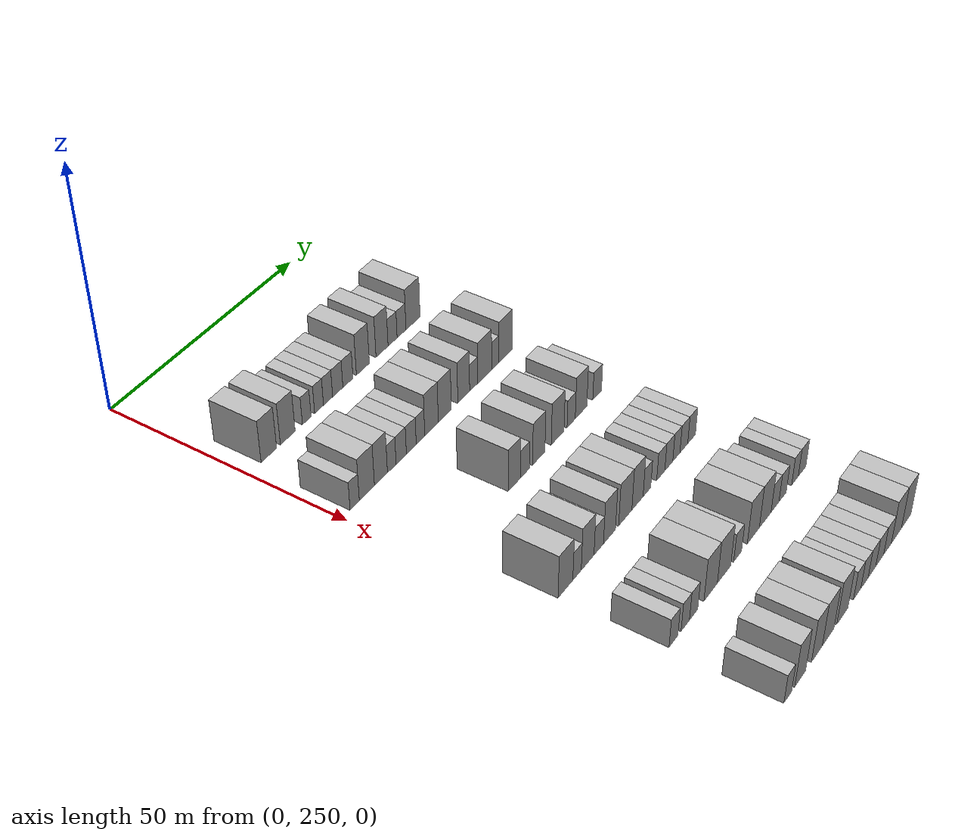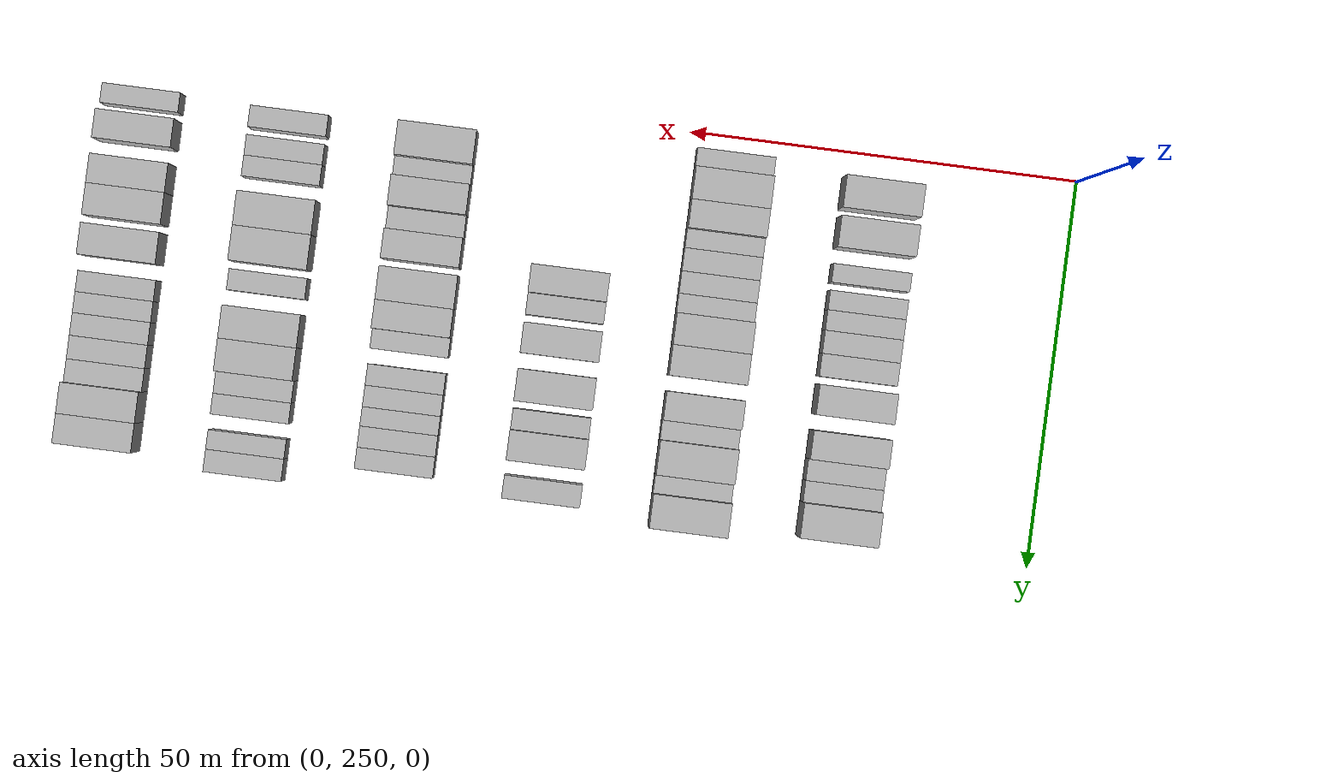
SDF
<sdf version="1.6">
 <world name="default">
  <model name="building_154">
   <static>1</static>
   <pose>25.0000 255.4189 0 0.000000 0.000000 0.000000</pose>
   <link name="link">
    <pose>0 0 4.50 0 0 0</pose>
    <collision name="collision"><geometry><box><size>10.0000 4.1557 9.0000</size></box></geometry></collision>
    <visual name="visual">
     <cast_shadows>0</cast_shadows>
     <geometry><box><size>10.0000 4.1557 9.0000</size></box></geometry>
     <material>
      <script>
       <uri>model://HANNAS_wall/materials/scripts</uri>
       <uri>model://HANNAS_wall/materials/textures</uri>
       <name>vrc/HANNAS_wall</name>
      </script>
     </material>
    </visual>
   </link>
  </model>
  <model name="building_155">
   <static>1</static>
   <pose>25.0000 260.5180 0 0.000000 0.000000 0.000000</pose>
   <link name="link">
    <pose>0 0 4.50 0 0 0</pose>
    <collision name="collision"><geometry><box><size>10.0000 4.0425 9.0000</size></box></geometry></collision>
    <visual name="visual">
     <cast_shadows>0</cast_shadows>
     <geometry><box><size>10.0000 4.0425 9.0000</size></box></geometry>
     <material>
      <script>
       <uri>model://HANNAS_wall/materials/scripts</uri>
       <uri>model://HANNAS_wall/materials/textures</uri>
       <name>vrc/HANNAS_wall</name>
      </script>
     </material>
    </visual>
   </link>
  </model>
  <model name="building_156">
   <static>1</static>
   <pose>25.0000 265.7465 0 0.000000 0.000000 0.000000</pose>
   <link name="link">
    <pose>0 0 3.00 0 0 0</pose>
    <collision name="collision"><geometry><box><size>10.0000 2.4146 6.0000</size></box></geometry></collision>
    <visual name="visual">
     <cast_shadows>0</cast_shadows>
     <geometry><box><size>10.0000 2.4146 6.0000</size></box></geometry>
     <material>
      <script>
       <uri>model://HANNAS_wall/materials/scripts</uri>
       <uri>model://HANNAS_wall/materials/textures</uri>
       <name>vrc/HANNAS_wall</name>
      </script>
     </material>
    </visual>
   </link>
  </model>
  <model name="building_157">
   <static>1</static>
   <pose>25.0000 269.2082 0 0.000000 0.000000 0.000000</pose>
   <link name="link">
    <pose>0 0 3.00 0 0 0</pose>
    <collision name="collision"><geometry><box><size>10.0000 2.5088 6.0000</size></box></geometry></collision>
    <visual name="visual">
     <cast_shadows>0</cast_shadows>
     <geometry><box><size>10.0000 2.5088 6.0000</size></box></geometry>
     <material>
      <script>
       <uri>model://HANNAS_wall/materials/scripts</uri>
       <uri>model://HANNAS_wall/materials/textures</uri>
       <name>vrc/HANNAS_wall</name>
      </script>
     </material>
    </visual>
   </link>
  </model>
  <model name="building_158">
   <static>1</static>
   <pose>25.0000 271.7677 0 0.000000 0.000000 0.000000</pose>
   <link name="link">
    <pose>0 0 3.00 0 0 0</pose>
    <collision name="collision"><geometry><box><size>10.0000 2.6101 6.0000</size></box></geometry></collision>
    <visual name="visual">
     <cast_shadows>0</cast_shadows>
     <geometry><box><size>10.0000 2.6101 6.0000</size></box></geometry>
     <material>
      <script>
       <uri>model://HANNAS_wall/materials/scripts</uri>
       <uri>model://HANNAS_wall/materials/textures</uri>
       <name>vrc/HANNAS_wall</name>
      </script>
     </material>
    </visual>
   </link>
  </model>
  <model name="building_159">
   <static>1</static>
   <pose>25.0000 274.5508 0 0.000000 0.000000 0.000000</pose>
   <link name="link">
    <pose>0 0 3.00 0 0 0</pose>
    <collision name="collision"><geometry><box><size>10.0000 2.9561 6.0000</size></box></geometry></collision>
    <visual name="visual">
     <cast_shadows>0</cast_shadows>
     <geometry><box><size>10.0000 2.9561 6.0000</size></box></geometry>
     <material>
      <script>
       <uri>model://HANNAS_wall/materials/scripts</uri>
       <uri>model://HANNAS_wall/materials/textures</uri>
       <name>vrc/HANNAS_wall</name>
      </script>
     </material>
    </visual>
   </link>
  </model>
  <model name="building_160">
   <static>1</static>
   <pose>25.0000 277.5053 0 0.000000 0.000000 0.000000</pose>
   <link name="link">
    <pose>0 0 3.00 0 0 0</pose>
    <collision name="collision"><geometry><box><size>10.0000 2.9529 6.0000</size></box></geometry></collision>
    <visual name="visual">
     <cast_shadows>0</cast_shadows>
     <geometry><box><size>10.0000 2.9529 6.0000</size></box></geometry>
     <material>
      <script>
       <uri>model://HANNAS_wall/materials/scripts</uri>
       <uri>model://HANNAS_wall/materials/textures</uri>
       <name>vrc/HANNAS_wall</name>
      </script>
     </material>
    </visual>
   </link>
  </model>
  <model name="building_161">
   <static>1</static>
   <pose>25.0000 281.9099 0 0.000000 0.000000 0.000000</pose>
   <link name="link">
    <pose>0 0 4.50 0 0 0</pose>
    <collision name="collision"><geometry><box><size>10.0000 3.8561 9.0000</size></box></geometry></collision>
    <visual name="visual">
     <cast_shadows>0</cast_shadows>
     <geometry><box><size>10.0000 3.8561 9.0000</size></box></geometry>
     <material>
      <script>
       <uri>model://HANNAS_wall/materials/scripts</uri>
       <uri>model://HANNAS_wall/materials/textures</uri>
       <name>vrc/HANNAS_wall</name>
      </script>
     </material>
    </visual>
   </link>
  </model>
  <model name="building_162">
   <static>1</static>
   <pose>25.0000 287.6745 0 0.000000 0.000000 0.000000</pose>
   <link name="link">
    <pose>0 0 4.50 0 0 0</pose>
    <collision name="collision"><geometry><box><size>10.0000 3.6731 9.0000</size></box></geometry></collision>
    <visual name="visual">
     <cast_shadows>0</cast_shadows>
     <geometry><box><size>10.0000 3.6731 9.0000</size></box></geometry>
     <material>
      <script>
       <uri>model://HANNAS_wall/materials/scripts</uri>
       <uri>model://HANNAS_wall/materials/textures</uri>
       <name>vrc/HANNAS_wall</name>
      </script>
     </material>
    </visual>
   </link>
  </model>
  <model name="building_163">
   <static>1</static>
   <pose>25.0000 290.9023 0 0.000000 0.000000 0.000000</pose>
   <link name="link">
    <pose>0 0 3.00 0 0 0</pose>
    <collision name="collision"><geometry><box><size>10.0000 2.7825 6.0000</size></box></geometry></collision>
    <visual name="visual">
     <cast_shadows>0</cast_shadows>
     <geometry><box><size>10.0000 2.7825 6.0000</size></box></geometry>
     <material>
      <script>
       <uri>model://HANNAS_wall/materials/scripts</uri>
       <uri>model://HANNAS_wall/materials/textures</uri>
       <name>vrc/HANNAS_wall</name>
      </script>
     </material>
    </visual>
   </link>
  </model>
  <model name="building_164">
   <static>1</static>
   <pose>25.0000 293.6774 0 0.000000 0.000000 0.000000</pose>
   <link name="link">
    <pose>0 0 3.00 0 0 0</pose>
    <collision name="collision"><geometry><box><size>10.0000 2.7676 6.0000</size></box></geometry></collision>
    <visual name="visual">
     <cast_shadows>0</cast_shadows>
     <geometry><box><size>10.0000 2.7676 6.0000</size></box></geometry>
     <material>
      <script>
       <uri>model://HANNAS_wall/materials/scripts</uri>
       <uri>model://HANNAS_wall/materials/textures</uri>
       <name>vrc/HANNAS_wall</name>
      </script>
     </material>
    </visual>
   </link>
  </model>
  <model name="building_165">
   <static>1</static>
   <pose>25.0000 297.2891 0 0.000000 0.000000 0.000000</pose>
   <link name="link">
    <pose>0 0 4.50 0 0 0</pose>
    <collision name="collision"><geometry><box><size>10.0000 4.4560 9.0000</size></box></geometry></collision>
    <visual name="visual">
     <cast_shadows>0</cast_shadows>
     <geometry><box><size>10.0000 4.4560 9.0000</size></box></geometry>
     <material>
      <script>
       <uri>model://HANNAS_wall/materials/scripts</uri>
       <uri>model://HANNAS_wall/materials/textures</uri>
       <name>vrc/HANNAS_wall</name>
      </script>
     </material>
    </visual>
   </link>
  </model>
  <model name="building_321">
   <static>1</static>
   <pose>44.0000 253.4458 0 0.000000 0.000000 0.000000</pose>
   <link name="link">
    <pose>0 0 3.00 0 0 0</pose>
    <collision name="collision"><geometry><box><size>10.0000 2.5305 6.0000</size></box></geometry></collision>
    <visual name="visual">
     <cast_shadows>0</cast_shadows>
     <geometry><box><size>10.0000 2.5305 6.0000</size></box></geometry>
     <material>
      <script>
       <uri>model://HANNAS_wall/materials/scripts</uri>
       <uri>model://HANNAS_wall/materials/textures</uri>
       <name>vrc/HANNAS_wall</name>
      </script>
     </material>
    </visual>
   </link>
  </model>
  <model name="building_322">
   <static>1</static>
   <pose>44.0000 256.7995 0 0.000000 0.000000 0.000000</pose>
   <link name="link">
    <pose>0 0 4.50 0 0 0</pose>
    <collision name="collision"><geometry><box><size>10.0000 4.1769 9.0000</size></box></geometry></collision>
    <visual name="visual">
     <cast_shadows>0</cast_shadows>
     <geometry><box><size>10.0000 4.1769 9.0000</size></box></geometry>
     <material>
      <script>
       <uri>model://HANNAS_wall/materials/scripts</uri>
       <uri>model://HANNAS_wall/materials/textures</uri>
       <name>vrc/HANNAS_wall</name>
      </script>
     </material>
    </visual>
   </link>
  </model>
  <model name="building_323">
   <static>1</static>
   <pose>44.0000 260.7114 0 0.000000 0.000000 0.000000</pose>
   <link name="link">
    <pose>0 0 4.50 0 0 0</pose>
    <collision name="collision"><geometry><box><size>10.0000 3.6469 9.0000</size></box></geometry></collision>
    <visual name="visual">
     <cast_shadows>0</cast_shadows>
     <geometry><box><size>10.0000 3.6469 9.0000</size></box></geometry>
     <material>
      <script>
       <uri>model://HANNAS_wall/materials/scripts</uri>
       <uri>model://HANNAS_wall/materials/textures</uri>
       <name>vrc/HANNAS_wall</name>
      </script>
     </material>
    </visual>
   </link>
  </model>
  <model name="building_324">
   <static>1</static>
   <pose>44.0000 263.7607 0 0.000000 0.000000 0.000000</pose>
   <link name="link">
    <pose>0 0 3.00 0 0 0</pose>
    <collision name="collision"><geometry><box><size>10.0000 2.4517 6.0000</size></box></geometry></collision>
    <visual name="visual">
     <cast_shadows>0</cast_shadows>
     <geometry><box><size>10.0000 2.4517 6.0000</size></box></geometry>
     <material>
      <script>
       <uri>model://HANNAS_wall/materials/scripts</uri>
       <uri>model://HANNAS_wall/materials/textures</uri>
       <name>vrc/HANNAS_wall</name>
      </script>
     </material>
    </visual>
   </link>
  </model>
  <model name="building_325">
   <static>1</static>
   <pose>44.0000 266.4668 0 0.000000 0.000000 0.000000</pose>
   <link name="link">
    <pose>0 0 3.00 0 0 0</pose>
    <collision name="collision"><geometry><box><size>10.0000 2.9605 6.0000</size></box></geometry></collision>
    <visual name="visual">
     <cast_shadows>0</cast_shadows>
     <geometry><box><size>10.0000 2.9605 6.0000</size></box></geometry>
     <material>
      <script>
       <uri>model://HANNAS_wall/materials/scripts</uri>
       <uri>model://HANNAS_wall/materials/textures</uri>
       <name>vrc/HANNAS_wall</name>
      </script>
     </material>
    </visual>
   </link>
  </model>
  <model name="building_326">
   <static>1</static>
   <pose>44.0000 269.3784 0 0.000000 0.000000 0.000000</pose>
   <link name="link">
    <pose>0 0 3.00 0 0 0</pose>
    <collision name="collision"><geometry><box><size>10.0000 2.8626 6.0000</size></box></geometry></collision>
    <visual name="visual">
     <cast_shadows>0</cast_shadows>
     <geometry><box><size>10.0000 2.8626 6.0000</size></box></geometry>
     <material>
      <script>
       <uri>model://HANNAS_wall/materials/scripts</uri>
       <uri>model://HANNAS_wall/materials/textures</uri>
       <name>vrc/HANNAS_wall</name>
      </script>
     </material>
    </visual>
   </link>
  </model>
  <model name="building_327">
   <static>1</static>
   <pose>44.0000 272.0693 0 0.000000 0.000000 0.000000</pose>
   <link name="link">
    <pose>0 0 3.00 0 0 0</pose>
    <collision name="collision"><geometry><box><size>10.0000 2.5192 6.0000</size></box></geometry></collision>
    <visual name="visual">
     <cast_shadows>0</cast_shadows>
     <geometry><box><size>10.0000 2.5192 6.0000</size></box></geometry>
     <material>
      <script>
       <uri>model://HANNAS_wall/materials/scripts</uri>
       <uri>model://HANNAS_wall/materials/textures</uri>
       <name>vrc/HANNAS_wall</name>
      </script>
     </material>
    </visual>
   </link>
  </model>
  <model name="building_328">
   <static>1</static>
   <pose>44.0000 275.3515 0 0.000000 0.000000 0.000000</pose>
   <link name="link">
    <pose>0 0 4.50 0 0 0</pose>
    <collision name="collision"><geometry><box><size>10.0000 4.0453 9.0000</size></box></geometry></collision>
    <visual name="visual">
     <cast_shadows>0</cast_shadows>
     <geometry><box><size>10.0000 4.0453 9.0000</size></box></geometry>
     <material>
      <script>
       <uri>model://HANNAS_wall/materials/scripts</uri>
       <uri>model://HANNAS_wall/materials/textures</uri>
       <name>vrc/HANNAS_wall</name>
      </script>
     </material>
    </visual>
   </link>
  </model>
  <model name="building_329">
   <static>1</static>
   <pose>44.0000 279.3405 0 0.000000 0.000000 0.000000</pose>
   <link name="link">
    <pose>0 0 4.50 0 0 0</pose>
    <collision name="collision"><geometry><box><size>10.0000 3.9327 9.0000</size></box></geometry></collision>
    <visual name="visual">
     <cast_shadows>0</cast_shadows>
     <geometry><box><size>10.0000 3.9327 9.0000</size></box></geometry>
     <material>
      <script>
       <uri>model://HANNAS_wall/materials/scripts</uri>
       <uri>model://HANNAS_wall/materials/textures</uri>
       <name>vrc/HANNAS_wall</name>
      </script>
     </material>
    </visual>
   </link>
  </model>
  <model name="building_330">
   <static>1</static>
   <pose>44.0000 285.1563 0 0.000000 0.000000 0.000000</pose>
   <link name="link">
    <pose>0 0 4.50 0 0 0</pose>
    <collision name="collision"><geometry><box><size>10.0000 3.6989 9.0000</size></box></geometry></collision>
    <visual name="visual">
     <cast_shadows>0</cast_shadows>
     <geometry><box><size>10.0000 3.6989 9.0000</size></box></geometry>
     <material>
      <script>
       <uri>model://HANNAS_wall/materials/scripts</uri>
       <uri>model://HANNAS_wall/materials/textures</uri>
       <name>vrc/HANNAS_wall</name>
      </script>
     </material>
    </visual>
   </link>
  </model>
  <model name="building_331">
   <static>1</static>
   <pose>44.0000 288.2702 0 0.000000 0.000000 0.000000</pose>
   <link name="link">
    <pose>0 0 3.00 0 0 0</pose>
    <collision name="collision"><geometry><box><size>10.0000 2.5289 6.0000</size></box></geometry></collision>
    <visual name="visual">
     <cast_shadows>0</cast_shadows>
     <geometry><box><size>10.0000 2.5289 6.0000</size></box></geometry>
     <material>
      <script>
       <uri>model://HANNAS_wall/materials/scripts</uri>
       <uri>model://HANNAS_wall/materials/textures</uri>
       <name>vrc/HANNAS_wall</name>
      </script>
     </material>
    </visual>
   </link>
  </model>
  <model name="building_332">
   <static>1</static>
   <pose>44.0000 291.7521 0 0.000000 0.000000 0.000000</pose>
   <link name="link">
    <pose>0 0 4.50 0 0 0</pose>
    <collision name="collision"><geometry><box><size>10.0000 4.4348 9.0000</size></box></geometry></collision>
    <visual name="visual">
     <cast_shadows>0</cast_shadows>
     <geometry><box><size>10.0000 4.4348 9.0000</size></box></geometry>
     <material>
      <script>
       <uri>model://HANNAS_wall/materials/scripts</uri>
       <uri>model://HANNAS_wall/materials/textures</uri>
       <name>vrc/HANNAS_wall</name>
      </script>
     </material>
    </visual>
   </link>
  </model>
  <model name="building_333">
   <static>1</static>
   <pose>44.0000 295.1700 0 0.000000 0.000000 0.000000</pose>
   <link name="link">
    <pose>0 0 3.00 0 0 0</pose>
    <collision name="collision"><geometry><box><size>10.0000 2.4010 6.0000</size></box></geometry></collision>
    <visual name="visual">
     <cast_shadows>0</cast_shadows>
     <geometry><box><size>10.0000 2.4010 6.0000</size></box></geometry>
     <material>
      <script>
       <uri>model://HANNAS_wall/materials/scripts</uri>
       <uri>model://HANNAS_wall/materials/textures</uri>
       <name>vrc/HANNAS_wall</name>
      </script>
     </material>
    </visual>
   </link>
  </model>
  <model name="building_334">
   <static>1</static>
   <pose>44.0000 298.5556 0 0.000000 0.000000 0.000000</pose>
   <link name="link">
    <pose>0 0 4.50 0 0 0</pose>
    <collision name="collision"><geometry><box><size>10.0000 4.3702 9.0000</size></box></geometry></collision>
    <visual name="visual">
     <cast_shadows>0</cast_shadows>
     <geometry><box><size>10.0000 4.3702 9.0000</size></box></geometry>
     <material>
      <script>
       <uri>model://HANNAS_wall/materials/scripts</uri>
       <uri>model://HANNAS_wall/materials/textures</uri>
       <name>vrc/HANNAS_wall</name>
      </script>
     </material>
    </visual>
   </link>
  </model>
  <model name="building_499">
   <static>1</static>
   <pose>63.0000 271.3844 0 0.000000 0.000000 0.000000</pose>
   <link name="link">
    <pose>0 0 4.50 0 0 0</pose>
    <collision name="collision"><geometry><box><size>10.0000 3.6034 9.0000</size></box></geometry></collision>
    <visual name="visual">
     <cast_shadows>0</cast_shadows>
     <geometry><box><size>10.0000 3.6034 9.0000</size></box></geometry>
     <material>
      <script>
       <uri>model://HANNAS_wall/materials/scripts</uri>
       <uri>model://HANNAS_wall/materials/textures</uri>
       <name>vrc/HANNAS_wall</name>
      </script>
     </material>
    </visual>
   </link>
  </model>
  <model name="building_500">
   <static>1</static>
   <pose>63.0000 274.5869 0 0.000000 0.000000 0.000000</pose>
   <link name="link">
    <pose>0 0 3.00 0 0 0</pose>
    <collision name="collision"><geometry><box><size>10.0000 2.8017 6.0000</size></box></geometry></collision>
    <visual name="visual">
     <cast_shadows>0</cast_shadows>
     <geometry><box><size>10.0000 2.8017 6.0000</size></box></geometry>
     <material>
      <script>
       <uri>model://HANNAS_wall/materials/scripts</uri>
       <uri>model://HANNAS_wall/materials/textures</uri>
       <name>vrc/HANNAS_wall</name>
      </script>
     </material>
    </visual>
   </link>
  </model>
  <model name="building_501">
   <static>1</static>
   <pose>63.0000 278.9366 0 0.000000 0.000000 0.000000</pose>
   <link name="link">
    <pose>0 0 4.50 0 0 0</pose>
    <collision name="collision"><geometry><box><size>10.0000 3.8977 9.0000</size></box></geometry></collision>
    <visual name="visual">
     <cast_shadows>0</cast_shadows>
     <geometry><box><size>10.0000 3.8977 9.0000</size></box></geometry>
     <material>
      <script>
       <uri>model://HANNAS_wall/materials/scripts</uri>
       <uri>model://HANNAS_wall/materials/textures</uri>
       <name>vrc/HANNAS_wall</name>
      </script>
     </material>
    </visual>
   </link>
  </model>
  <model name="building_502">
   <static>1</static>
   <pose>63.0000 284.9377 0 0.000000 0.000000 0.000000</pose>
   <link name="link">
    <pose>0 0 4.50 0 0 0</pose>
    <collision name="collision"><geometry><box><size>10.0000 4.1046 9.0000</size></box></geometry></collision>
    <visual name="visual">
     <cast_shadows>0</cast_shadows>
     <geometry><box><size>10.0000 4.1046 9.0000</size></box></geometry>
     <material>
      <script>
       <uri>model://HANNAS_wall/materials/scripts</uri>
       <uri>model://HANNAS_wall/materials/textures</uri>
       <name>vrc/HANNAS_wall</name>
      </script>
     </material>
    </visual>
   </link>
  </model>
  <model name="building_503">
   <static>1</static>
   <pose>63.0000 289.3331 0 0.000000 0.000000 0.000000</pose>
   <link name="link">
    <pose>0 0 3.00 0 0 0</pose>
    <collision name="collision"><geometry><box><size>10.0000 2.6863 6.0000</size></box></geometry></collision>
    <visual name="visual">
     <cast_shadows>0</cast_shadows>
     <geometry><box><size>10.0000 2.6863 6.0000</size></box></geometry>
     <material>
      <script>
       <uri>model://HANNAS_wall/materials/scripts</uri>
       <uri>model://HANNAS_wall/materials/textures</uri>
       <name>vrc/HANNAS_wall</name>
      </script>
     </material>
    </visual>
   </link>
  </model>
  <model name="building_504">
   <static>1</static>
   <pose>63.0000 292.6069 0 0.000000 0.000000 0.000000</pose>
   <link name="link">
    <pose>0 0 4.50 0 0 0</pose>
    <collision name="collision"><geometry><box><size>10.0000 3.8612 9.0000</size></box></geometry></collision>
    <visual name="visual">
     <cast_shadows>0</cast_shadows>
     <geometry><box><size>10.0000 3.8612 9.0000</size></box></geometry>
     <material>
      <script>
       <uri>model://HANNAS_wall/materials/scripts</uri>
       <uri>model://HANNAS_wall/materials/textures</uri>
       <name>vrc/HANNAS_wall</name>
      </script>
     </material>
    </visual>
   </link>
  </model>
  <model name="building_505">
   <static>1</static>
   <pose>63.0000 298.0145 0 0.000000 0.000000 0.000000</pose>
   <link name="link">
    <pose>0 0 3.00 0 0 0</pose>
    <collision name="collision"><geometry><box><size>10.0000 2.9541 6.0000</size></box></geometry></collision>
    <visual name="visual">
     <cast_shadows>0</cast_shadows>
     <geometry><box><size>10.0000 2.9541 6.0000</size></box></geometry>
     <material>
      <script>
       <uri>model://HANNAS_wall/materials/scripts</uri>
       <uri>model://HANNAS_wall/materials/textures</uri>
       <name>vrc/HANNAS_wall</name>
      </script>
     </material>
    </visual>
   </link>
  </model>
  <model name="building_662">
   <static>1</static>
   <pose>82.0000 255.9859 0 0.000000 0.000000 0.000000</pose>
   <link name="link">
    <pose>0 0 4.50 0 0 0</pose>
    <collision name="collision"><geometry><box><size>10.0000 4.3744 9.0000</size></box></geometry></collision>
    <visual name="visual">
     <cast_shadows>0</cast_shadows>
     <geometry><box><size>10.0000 4.3744 9.0000</size></box></geometry>
     <material>
      <script>
       <uri>model://HANNAS_wall/materials/scripts</uri>
       <uri>model://HANNAS_wall/materials/textures</uri>
       <name>vrc/HANNAS_wall</name>
      </script>
     </material>
    </visual>
   </link>
  </model>
  <model name="building_663">
   <static>1</static>
   <pose>82.0000 259.4415 0 0.000000 0.000000 0.000000</pose>
   <link name="link">
    <pose>0 0 3.00 0 0 0</pose>
    <collision name="collision"><geometry><box><size>10.0000 2.5367 6.0000</size></box></geometry></collision>
    <visual name="visual">
     <cast_shadows>0</cast_shadows>
     <geometry><box><size>10.0000 2.5367 6.0000</size></box></geometry>
     <material>
      <script>
       <uri>model://HANNAS_wall/materials/scripts</uri>
       <uri>model://HANNAS_wall/materials/textures</uri>
       <name>vrc/HANNAS_wall</name>
      </script>
     </material>
    </visual>
   </link>
  </model>
  <model name="building_664">
   <static>1</static>
   <pose>82.0000 262.6523 0 0.000000 0.000000 0.000000</pose>
   <link name="link">
    <pose>0 0 4.50 0 0 0</pose>
    <collision name="collision"><geometry><box><size>10.0000 3.8849 9.0000</size></box></geometry></collision>
    <visual name="visual">
     <cast_shadows>0</cast_shadows>
     <geometry><box><size>10.0000 3.8849 9.0000</size></box></geometry>
     <material>
      <script>
       <uri>model://HANNAS_wall/materials/scripts</uri>
       <uri>model://HANNAS_wall/materials/textures</uri>
       <name>vrc/HANNAS_wall</name>
      </script>
     </material>
    </visual>
   </link>
  </model>
  <model name="building_665">
   <static>1</static>
   <pose>82.0000 266.0613 0 0.000000 0.000000 0.000000</pose>
   <link name="link">
    <pose>0 0 3.00 0 0 0</pose>
    <collision name="collision"><geometry><box><size>10.0000 2.9332 6.0000</size></box></geometry></collision>
    <visual name="visual">
     <cast_shadows>0</cast_shadows>
     <geometry><box><size>10.0000 2.9332 6.0000</size></box></geometry>
     <material>
      <script>
       <uri>model://HANNAS_wall/materials/scripts</uri>
       <uri>model://HANNAS_wall/materials/textures</uri>
       <name>vrc/HANNAS_wall</name>
      </script>
     </material>
    </visual>
   </link>
  </model>
  <model name="building_666">
   <static>1</static>
   <pose>82.0000 269.4167 0 0.000000 0.000000 0.000000</pose>
   <link name="link">
    <pose>0 0 4.50 0 0 0</pose>
    <collision name="collision"><geometry><box><size>10.0000 3.7776 9.0000</size></box></geometry></collision>
    <visual name="visual">
     <cast_shadows>0</cast_shadows>
     <geometry><box><size>10.0000 3.7776 9.0000</size></box></geometry>
     <material>
      <script>
       <uri>model://HANNAS_wall/materials/scripts</uri>
       <uri>model://HANNAS_wall/materials/textures</uri>
       <name>vrc/HANNAS_wall</name>
      </script>
     </material>
    </visual>
   </link>
  </model>
  <model name="building_667">
   <static>1</static>
   <pose>82.0000 274.4447 0 0.000000 0.000000 0.000000</pose>
   <link name="link">
    <pose>0 0 4.50 0 0 0</pose>
    <collision name="collision"><geometry><box><size>10.0000 4.2784 9.0000</size></box></geometry></collision>
    <visual name="visual">
     <cast_shadows>0</cast_shadows>
     <geometry><box><size>10.0000 4.2784 9.0000</size></box></geometry>
     <material>
      <script>
       <uri>model://HANNAS_wall/materials/scripts</uri>
       <uri>model://HANNAS_wall/materials/textures</uri>
       <name>vrc/HANNAS_wall</name>
      </script>
     </material>
    </visual>
   </link>
  </model>
  <model name="building_668">
   <static>1</static>
   <pose>82.0000 278.4156 0 0.000000 0.000000 0.000000</pose>
   <link name="link">
    <pose>0 0 4.50 0 0 0</pose>
    <collision name="collision"><geometry><box><size>10.0000 3.6634 9.0000</size></box></geometry></collision>
    <visual name="visual">
     <cast_shadows>0</cast_shadows>
     <geometry><box><size>10.0000 3.6634 9.0000</size></box></geometry>
     <material>
      <script>
       <uri>model://HANNAS_wall/materials/scripts</uri>
       <uri>model://HANNAS_wall/materials/textures</uri>
       <name>vrc/HANNAS_wall</name>
      </script>
     </material>
    </visual>
   </link>
  </model>
  <model name="building_669">
   <static>1</static>
   <pose>82.0000 281.5140 0 0.000000 0.000000 0.000000</pose>
   <link name="link">
    <pose>0 0 3.00 0 0 0</pose>
    <collision name="collision"><geometry><box><size>10.0000 2.5333 6.0000</size></box></geometry></collision>
    <visual name="visual">
     <cast_shadows>0</cast_shadows>
     <geometry><box><size>10.0000 2.5333 6.0000</size></box></geometry>
     <material>
      <script>
       <uri>model://HANNAS_wall/materials/scripts</uri>
       <uri>model://HANNAS_wall/materials/textures</uri>
       <name>vrc/HANNAS_wall</name>
      </script>
     </material>
    </visual>
   </link>
  </model>
  <model name="building_670">
   <static>1</static>
   <pose>82.0000 286.1463 0 0.000000 0.000000 0.000000</pose>
   <link name="link">
    <pose>0 0 3.00 0 0 0</pose>
    <collision name="collision"><geometry><box><size>10.0000 2.7313 6.0000</size></box></geometry></collision>
    <visual name="visual">
     <cast_shadows>0</cast_shadows>
     <geometry><box><size>10.0000 2.7313 6.0000</size></box></geometry>
     <material>
      <script>
       <uri>model://HANNAS_wall/materials/scripts</uri>
       <uri>model://HANNAS_wall/materials/textures</uri>
       <name>vrc/HANNAS_wall</name>
      </script>
     </material>
    </visual>
   </link>
  </model>
  <model name="building_671">
   <static>1</static>
   <pose>82.0000 288.8787 0 0.000000 0.000000 0.000000</pose>
   <link name="link">
    <pose>0 0 3.00 0 0 0</pose>
    <collision name="collision"><geometry><box><size>10.0000 2.7336 6.0000</size></box></geometry></collision>
    <visual name="visual">
     <cast_shadows>0</cast_shadows>
     <geometry><box><size>10.0000 2.7336 6.0000</size></box></geometry>
     <material>
      <script>
       <uri>model://HANNAS_wall/materials/scripts</uri>
       <uri>model://HANNAS_wall/materials/textures</uri>
       <name>vrc/HANNAS_wall</name>
      </script>
     </material>
    </visual>
   </link>
  </model>
  <model name="building_672">
   <static>1</static>
   <pose>82.0000 291.4820 0 0.000000 0.000000 0.000000</pose>
   <link name="link">
    <pose>0 0 3.00 0 0 0</pose>
    <collision name="collision"><geometry><box><size>10.0000 2.4729 6.0000</size></box></geometry></collision>
    <visual name="visual">
     <cast_shadows>0</cast_shadows>
     <geometry><box><size>10.0000 2.4729 6.0000</size></box></geometry>
     <material>
      <script>
       <uri>model://HANNAS_wall/materials/scripts</uri>
       <uri>model://HANNAS_wall/materials/textures</uri>
       <name>vrc/HANNAS_wall</name>
      </script>
     </material>
    </visual>
   </link>
  </model>
  <model name="building_673">
   <static>1</static>
   <pose>82.0000 294.0789 0 0.000000 0.000000 0.000000</pose>
   <link name="link">
    <pose>0 0 3.00 0 0 0</pose>
    <collision name="collision"><geometry><box><size>10.0000 2.7210 6.0000</size></box></geometry></collision>
    <visual name="visual">
     <cast_shadows>0</cast_shadows>
     <geometry><box><size>10.0000 2.7210 6.0000</size></box></geometry>
     <material>
      <script>
       <uri>model://HANNAS_wall/materials/scripts</uri>
       <uri>model://HANNAS_wall/materials/textures</uri>
       <name>vrc/HANNAS_wall</name>
      </script>
     </material>
    </visual>
   </link>
  </model>
  <model name="building_674">
   <static>1</static>
   <pose>82.0000 296.8046 0 0.000000 0.000000 0.000000</pose>
   <link name="link">
    <pose>0 0 3.00 0 0 0</pose>
    <collision name="collision"><geometry><box><size>10.0000 2.7303 6.0000</size></box></geometry></collision>
    <visual name="visual">
     <cast_shadows>0</cast_shadows>
     <geometry><box><size>10.0000 2.7303 6.0000</size></box></geometry>
     <material>
      <script>
       <uri>model://HANNAS_wall/materials/scripts</uri>
       <uri>model://HANNAS_wall/materials/textures</uri>
       <name>vrc/HANNAS_wall</name>
      </script>
     </material>
    </visual>
   </link>
  </model>
  <model name="building_844">
   <static>1</static>
   <pose>101.0000 255.5512 0 0.000000 0.000000 0.000000</pose>
   <link name="link">
    <pose>0 0 3.00 0 0 0</pose>
    <collision name="collision"><geometry><box><size>10.0000 2.7451 6.0000</size></box></geometry></collision>
    <visual name="visual">
     <cast_shadows>0</cast_shadows>
     <geometry><box><size>10.0000 2.7451 6.0000</size></box></geometry>
     <material>
      <script>
       <uri>model://HANNAS_wall/materials/scripts</uri>
       <uri>model://HANNAS_wall/materials/textures</uri>
       <name>vrc/HANNAS_wall</name>
      </script>
     </material>
    </visual>
   </link>
  </model>
  <model name="building_845">
   <static>1</static>
   <pose>101.0000 259.2382 0 0.000000 0.000000 0.000000</pose>
   <link name="link">
    <pose>0 0 3.00 0 0 0</pose>
    <collision name="collision"><geometry><box><size>10.0000 2.6289 6.0000</size></box></geometry></collision>
    <visual name="visual">
     <cast_shadows>0</cast_shadows>
     <geometry><box><size>10.0000 2.6289 6.0000</size></box></geometry>
     <material>
      <script>
       <uri>model://HANNAS_wall/materials/scripts</uri>
       <uri>model://HANNAS_wall/materials/textures</uri>
       <name>vrc/HANNAS_wall</name>
      </script>
     </material>
    </visual>
   </link>
  </model>
  <model name="building_846">
   <static>1</static>
   <pose>101.0000 261.8854 0 0.000000 0.000000 0.000000</pose>
   <link name="link">
    <pose>0 0 3.00 0 0 0</pose>
    <collision name="collision"><geometry><box><size>10.0000 2.6655 6.0000</size></box></geometry></collision>
    <visual name="visual">
     <cast_shadows>0</cast_shadows>
     <geometry><box><size>10.0000 2.6655 6.0000</size></box></geometry>
     <material>
      <script>
       <uri>model://HANNAS_wall/materials/scripts</uri>
       <uri>model://HANNAS_wall/materials/textures</uri>
       <name>vrc/HANNAS_wall</name>
      </script>
     </material>
    </visual>
   </link>
  </model>
  <model name="building_847">
   <static>1</static>
   <pose>101.0000 267.4102 0 0.000000 0.000000 0.000000</pose>
   <link name="link">
    <pose>0 0 4.50 0 0 0</pose>
    <collision name="collision"><geometry><box><size>10.0000 4.3841 9.0000</size></box></geometry></collision>
    <visual name="visual">
     <cast_shadows>0</cast_shadows>
     <geometry><box><size>10.0000 4.3841 9.0000</size></box></geometry>
     <material>
      <script>
       <uri>model://HANNAS_wall/materials/scripts</uri>
       <uri>model://HANNAS_wall/materials/textures</uri>
       <name>vrc/HANNAS_wall</name>
      </script>
     </material>
    </visual>
   </link>
  </model>
  <model name="building_848">
   <static>1</static>
   <pose>101.0000 271.8366 0 0.000000 0.000000 0.000000</pose>
   <link name="link">
    <pose>0 0 4.50 0 0 0</pose>
    <collision name="collision"><geometry><box><size>10.0000 4.4687 9.0000</size></box></geometry></collision>
    <visual name="visual">
     <cast_shadows>0</cast_shadows>
     <geometry><box><size>10.0000 4.4687 9.0000</size></box></geometry>
     <material>
      <script>
       <uri>model://HANNAS_wall/materials/scripts</uri>
       <uri>model://HANNAS_wall/materials/textures</uri>
       <name>vrc/HANNAS_wall</name>
      </script>
     </material>
    </visual>
   </link>
  </model>
  <model name="building_849">
   <static>1</static>
   <pose>101.0000 276.4186 0 0.000000 0.000000 0.000000</pose>
   <link name="link">
    <pose>0 0 3.00 0 0 0</pose>
    <collision name="collision"><geometry><box><size>10.0000 2.6954 6.0000</size></box></geometry></collision>
    <visual name="visual">
     <cast_shadows>0</cast_shadows>
     <geometry><box><size>10.0000 2.6954 6.0000</size></box></geometry>
     <material>
      <script>
       <uri>model://HANNAS_wall/materials/scripts</uri>
       <uri>model://HANNAS_wall/materials/textures</uri>
       <name>vrc/HANNAS_wall</name>
      </script>
     </material>
    </visual>
   </link>
  </model>
  <model name="building_850">
   <static>1</static>
   <pose>101.0000 281.8703 0 0.000000 0.000000 0.000000</pose>
   <link name="link">
    <pose>0 0 4.50 0 0 0</pose>
    <collision name="collision"><geometry><box><size>10.0000 4.2079 9.0000</size></box></geometry></collision>
    <visual name="visual">
     <cast_shadows>0</cast_shadows>
     <geometry><box><size>10.0000 4.2079 9.0000</size></box></geometry>
     <material>
      <script>
       <uri>model://HANNAS_wall/materials/scripts</uri>
       <uri>model://HANNAS_wall/materials/textures</uri>
       <name>vrc/HANNAS_wall</name>
      </script>
     </material>
    </visual>
   </link>
  </model>
  <model name="building_851">
   <static>1</static>
   <pose>101.0000 286.0642 0 0.000000 0.000000 0.000000</pose>
   <link name="link">
    <pose>0 0 4.50 0 0 0</pose>
    <collision name="collision"><geometry><box><size>10.0000 4.1801 9.0000</size></box></geometry></collision>
    <visual name="visual">
     <cast_shadows>0</cast_shadows>
     <geometry><box><size>10.0000 4.1801 9.0000</size></box></geometry>
     <material>
      <script>
       <uri>model://HANNAS_wall/materials/scripts</uri>
       <uri>model://HANNAS_wall/materials/textures</uri>
       <name>vrc/HANNAS_wall</name>
      </script>
     </material>
    </visual>
   </link>
  </model>
  <model name="building_852">
   <static>1</static>
   <pose>101.0000 289.5808 0 0.000000 0.000000 0.000000</pose>
   <link name="link">
    <pose>0 0 3.00 0 0 0</pose>
    <collision name="collision"><geometry><box><size>10.0000 2.8530 6.0000</size></box></geometry></collision>
    <visual name="visual">
     <cast_shadows>0</cast_shadows>
     <geometry><box><size>10.0000 2.8530 6.0000</size></box></geometry>
     <material>
      <script>
       <uri>model://HANNAS_wall/materials/scripts</uri>
       <uri>model://HANNAS_wall/materials/textures</uri>
       <name>vrc/HANNAS_wall</name>
      </script>
     </material>
    </visual>
   </link>
  </model>
  <model name="building_853">
   <static>1</static>
   <pose>101.0000 292.3343 0 0.000000 0.000000 0.000000</pose>
   <link name="link">
    <pose>0 0 3.00 0 0 0</pose>
    <collision name="collision"><geometry><box><size>10.0000 2.6540 6.0000</size></box></geometry></collision>
    <visual name="visual">
     <cast_shadows>0</cast_shadows>
     <geometry><box><size>10.0000 2.6540 6.0000</size></box></geometry>
     <material>
      <script>
       <uri>model://HANNAS_wall/materials/scripts</uri>
       <uri>model://HANNAS_wall/materials/textures</uri>
       <name>vrc/HANNAS_wall</name>
      </script>
     </material>
    </visual>
   </link>
  </model>
  <model name="building_854">
   <static>1</static>
   <pose>101.0000 296.9118 0 0.000000 0.000000 0.000000</pose>
   <link name="link">
    <pose>0 0 3.00 0 0 0</pose>
    <collision name="collision"><geometry><box><size>10.0000 2.5011 6.0000</size></box></geometry></collision>
    <visual name="visual">
     <cast_shadows>0</cast_shadows>
     <geometry><box><size>10.0000 2.5011 6.0000</size></box></geometry>
     <material>
      <script>
       <uri>model://HANNAS_wall/materials/scripts</uri>
       <uri>model://HANNAS_wall/materials/textures</uri>
       <name>vrc/HANNAS_wall</name>
      </script>
     </material>
    </visual>
   </link>
  </model>
  <model name="building_855">
   <static>1</static>
   <pose>101.0000 299.6002 0 0.000000 0.000000 0.000000</pose>
   <link name="link">
    <pose>0 0 3.00 0 0 0</pose>
    <collision name="collision"><geometry><box><size>10.0000 2.8755 6.0000</size></box></geometry></collision>
    <visual name="visual">
     <cast_shadows>0</cast_shadows>
     <geometry><box><size>10.0000 2.8755 6.0000</size></box></geometry>
     <material>
      <script>
       <uri>model://HANNAS_wall/materials/scripts</uri>
       <uri>model://HANNAS_wall/materials/textures</uri>
       <name>vrc/HANNAS_wall</name>
      </script>
     </material>
    </visual>
   </link>
  </model>
  <model name="building_1021">
   <static>1</static>
   <pose>120.0000 255.0365 0 0.000000 0.000000 0.000000</pose>
   <link name="link">
    <pose>0 0 3.00 0 0 0</pose>
    <collision name="collision"><geometry><box><size>10.0000 2.5341 6.0000</size></box></geometry></collision>
    <visual name="visual">
     <cast_shadows>0</cast_shadows>
     <geometry><box><size>10.0000 2.5341 6.0000</size></box></geometry>
     <material>
      <script>
       <uri>model://HANNAS_wall/materials/scripts</uri>
       <uri>model://HANNAS_wall/materials/textures</uri>
       <name>vrc/HANNAS_wall</name>
      </script>
     </material>
    </visual>
   </link>
  </model>
  <model name="building_1022">
   <static>1</static>
   <pose>120.0000 259.1367 0 0.000000 0.000000 0.000000</pose>
   <link name="link">
    <pose>0 0 4.50 0 0 0</pose>
    <collision name="collision"><geometry><box><size>10.0000 3.6662 9.0000</size></box></geometry></collision>
    <visual name="visual">
     <cast_shadows>0</cast_shadows>
     <geometry><box><size>10.0000 3.6662 9.0000</size></box></geometry>
     <material>
      <script>
       <uri>model://HANNAS_wall/materials/scripts</uri>
       <uri>model://HANNAS_wall/materials/textures</uri>
       <name>vrc/HANNAS_wall</name>
      </script>
     </material>
    </visual>
   </link>
  </model>
  <model name="building_1023">
   <static>1</static>
   <pose>120.0000 264.8354 0 0.000000 0.000000 0.000000</pose>
   <link name="link">
    <pose>0 0 4.50 0 0 0</pose>
    <collision name="collision"><geometry><box><size>10.0000 3.7311 9.0000</size></box></geometry></collision>
    <visual name="visual">
     <cast_shadows>0</cast_shadows>
     <geometry><box><size>10.0000 3.7311 9.0000</size></box></geometry>
     <material>
      <script>
       <uri>model://HANNAS_wall/materials/scripts</uri>
       <uri>model://HANNAS_wall/materials/textures</uri>
       <name>vrc/HANNAS_wall</name>
      </script>
     </material>
    </visual>
   </link>
  </model>
  <model name="building_1024">
   <static>1</static>
   <pose>120.0000 268.7251 0 0.000000 0.000000 0.000000</pose>
   <link name="link">
    <pose>0 0 4.50 0 0 0</pose>
    <collision name="collision"><geometry><box><size>10.0000 4.0483 9.0000</size></box></geometry></collision>
    <visual name="visual">
     <cast_shadows>0</cast_shadows>
     <geometry><box><size>10.0000 4.0483 9.0000</size></box></geometry>
     <material>
      <script>
       <uri>model://HANNAS_wall/materials/scripts</uri>
       <uri>model://HANNAS_wall/materials/textures</uri>
       <name>vrc/HANNAS_wall</name>
      </script>
     </material>
    </visual>
   </link>
  </model>
  <model name="building_1025">
   <static>1</static>
   <pose>120.0000 273.7642 0 0.000000 0.000000 0.000000</pose>
   <link name="link">
    <pose>0 0 4.50 0 0 0</pose>
    <collision name="collision"><geometry><box><size>10.0000 4.0299 9.0000</size></box></geometry></collision>
    <visual name="visual">
     <cast_shadows>0</cast_shadows>
     <geometry><box><size>10.0000 4.0299 9.0000</size></box></geometry>
     <material>
      <script>
       <uri>model://HANNAS_wall/materials/scripts</uri>
       <uri>model://HANNAS_wall/materials/textures</uri>
       <name>vrc/HANNAS_wall</name>
      </script>
     </material>
    </visual>
   </link>
  </model>
  <model name="building_1026">
   <static>1</static>
   <pose>120.0000 279.1290 0 0.000000 0.000000 0.000000</pose>
   <link name="link">
    <pose>0 0 3.00 0 0 0</pose>
    <collision name="collision"><geometry><box><size>10.0000 2.6997 6.0000</size></box></geometry></collision>
    <visual name="visual">
     <cast_shadows>0</cast_shadows>
     <geometry><box><size>10.0000 2.6997 6.0000</size></box></geometry>
     <material>
      <script>
       <uri>model://HANNAS_wall/materials/scripts</uri>
       <uri>model://HANNAS_wall/materials/textures</uri>
       <name>vrc/HANNAS_wall</name>
      </script>
     </material>
    </visual>
   </link>
  </model>
  <model name="building_1027">
   <static>1</static>
   <pose>120.0000 281.8254 0 0.000000 0.000000 0.000000</pose>
   <link name="link">
    <pose>0 0 3.00 0 0 0</pose>
    <collision name="collision"><geometry><box><size>10.0000 2.6932 6.0000</size></box></geometry></collision>
    <visual name="visual">
     <cast_shadows>0</cast_shadows>
     <geometry><box><size>10.0000 2.6932 6.0000</size></box></geometry>
     <material>
      <script>
       <uri>model://HANNAS_wall/materials/scripts</uri>
       <uri>model://HANNAS_wall/materials/textures</uri>
       <name>vrc/HANNAS_wall</name>
      </script>
     </material>
    </visual>
   </link>
  </model>
  <model name="building_1028">
   <static>1</static>
   <pose>120.0000 284.6196 0 0.000000 0.000000 0.000000</pose>
   <link name="link">
    <pose>0 0 3.00 0 0 0</pose>
    <collision name="collision"><geometry><box><size>10.0000 2.8952 6.0000</size></box></geometry></collision>
    <visual name="visual">
     <cast_shadows>0</cast_shadows>
     <geometry><box><size>10.0000 2.8952 6.0000</size></box></geometry>
     <material>
      <script>
       <uri>model://HANNAS_wall/materials/scripts</uri>
       <uri>model://HANNAS_wall/materials/textures</uri>
       <name>vrc/HANNAS_wall</name>
      </script>
     </material>
    </visual>
   </link>
  </model>
  <model name="building_1029">
   <static>1</static>
   <pose>120.0000 287.5666 0 0.000000 0.000000 0.000000</pose>
   <link name="link">
    <pose>0 0 3.00 0 0 0</pose>
    <collision name="collision"><geometry><box><size>10.0000 2.9989 6.0000</size></box></geometry></collision>
    <visual name="visual">
     <cast_shadows>0</cast_shadows>
     <geometry><box><size>10.0000 2.9989 6.0000</size></box></geometry>
     <material>
      <script>
       <uri>model://HANNAS_wall/materials/scripts</uri>
       <uri>model://HANNAS_wall/materials/textures</uri>
       <name>vrc/HANNAS_wall</name>
      </script>
     </material>
    </visual>
   </link>
  </model>
  <model name="building_1030">
   <static>1</static>
   <pose>120.0000 290.5582 0 0.000000 0.000000 0.000000</pose>
   <link name="link">
    <pose>0 0 3.00 0 0 0</pose>
    <collision name="collision"><geometry><box><size>10.0000 2.9843 6.0000</size></box></geometry></collision>
    <visual name="visual">
     <cast_shadows>0</cast_shadows>
     <geometry><box><size>10.0000 2.9843 6.0000</size></box></geometry>
     <material>
      <script>
       <uri>model://HANNAS_wall/materials/scripts</uri>
       <uri>model://HANNAS_wall/materials/textures</uri>
       <name>vrc/HANNAS_wall</name>
      </script>
     </material>
    </visual>
   </link>
  </model>
  <model name="building_1031">
   <static>1</static>
   <pose>120.0000 294.0278 0 0.000000 0.000000 0.000000</pose>
   <link name="link">
    <pose>0 0 4.50 0 0 0</pose>
    <collision name="collision"><geometry><box><size>10.0000 3.9548 9.0000</size></box></geometry></collision>
    <visual name="visual">
     <cast_shadows>0</cast_shadows>
     <geometry><box><size>10.0000 3.9548 9.0000</size></box></geometry>
     <material>
      <script>
       <uri>model://HANNAS_wall/materials/scripts</uri>
       <uri>model://HANNAS_wall/materials/textures</uri>
       <name>vrc/HANNAS_wall</name>
      </script>
     </material>
    </visual>
   </link>
  </model>
  <model name="building_1032">
   <static>1</static>
   <pose>120.0000 297.8960 0 0.000000 0.000000 0.000000</pose>
   <link name="link">
    <pose>0 0 4.50 0 0 0</pose>
    <collision name="collision"><geometry><box><size>10.0000 3.7816 9.0000</size></box></geometry></collision>
    <visual name="visual">
     <cast_shadows>0</cast_shadows>
     <geometry><box><size>10.0000 3.7816 9.0000</size></box></geometry>
     <material>
      <script>
       <uri>model://HANNAS_wall/materials/scripts</uri>
       <uri>model://HANNAS_wall/materials/textures</uri>
       <name>vrc/HANNAS_wall</name>
      </script>
     </material>
    </visual>
   </link>
  </model>
 </world>
</sdf>
